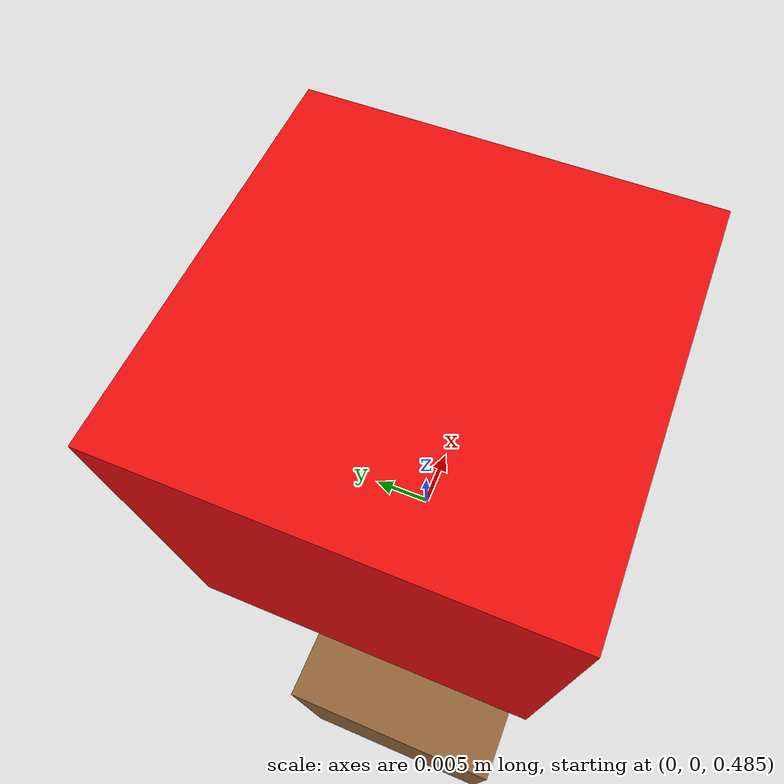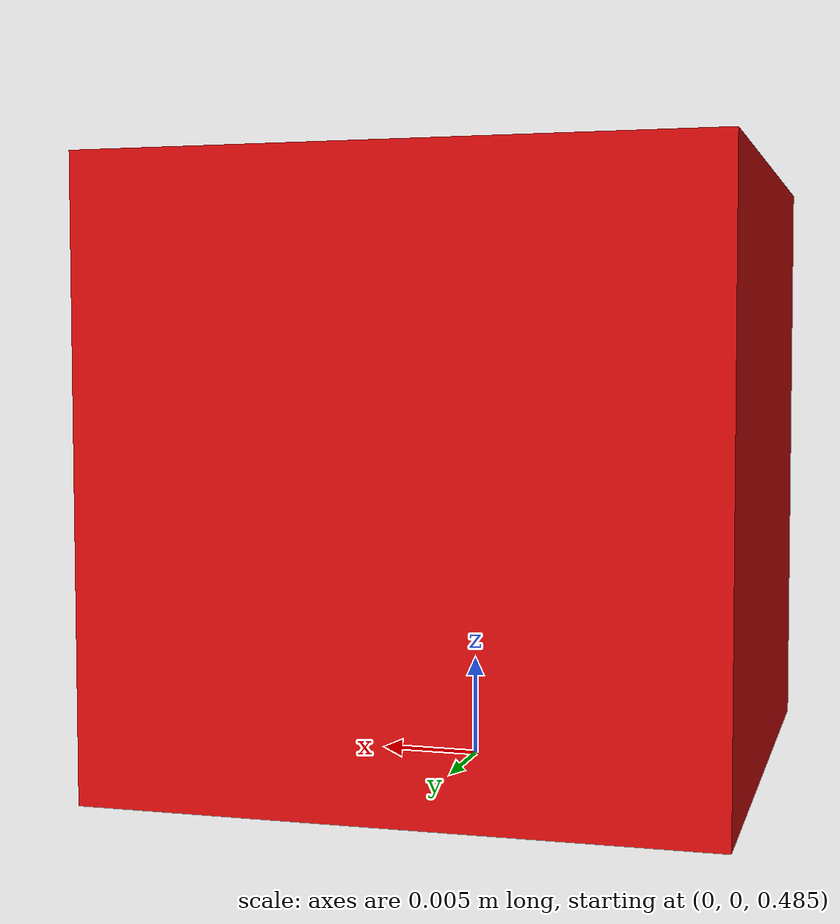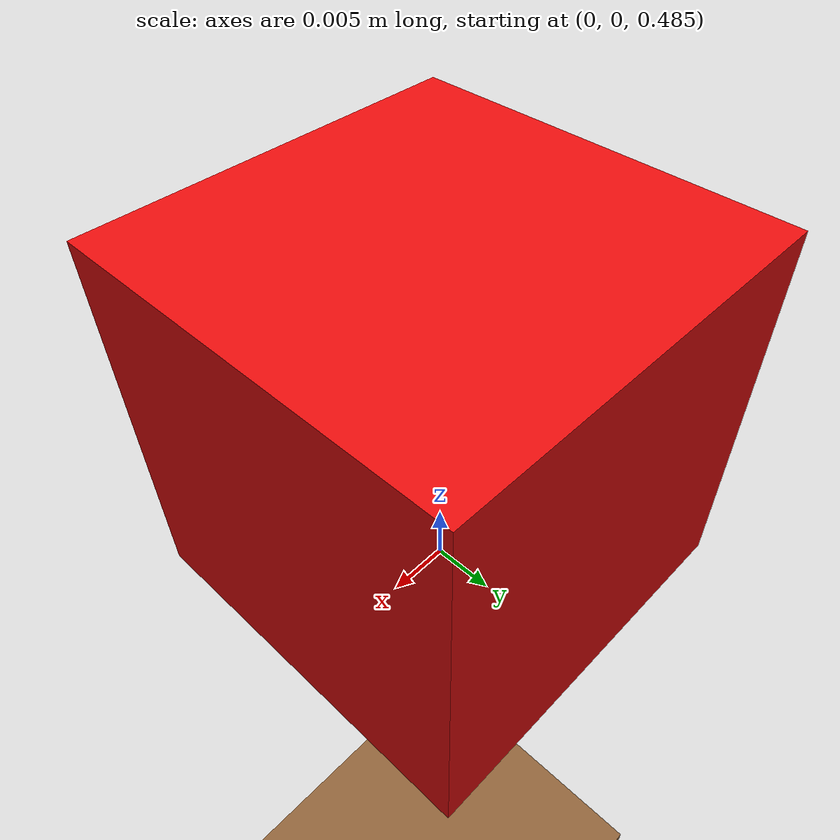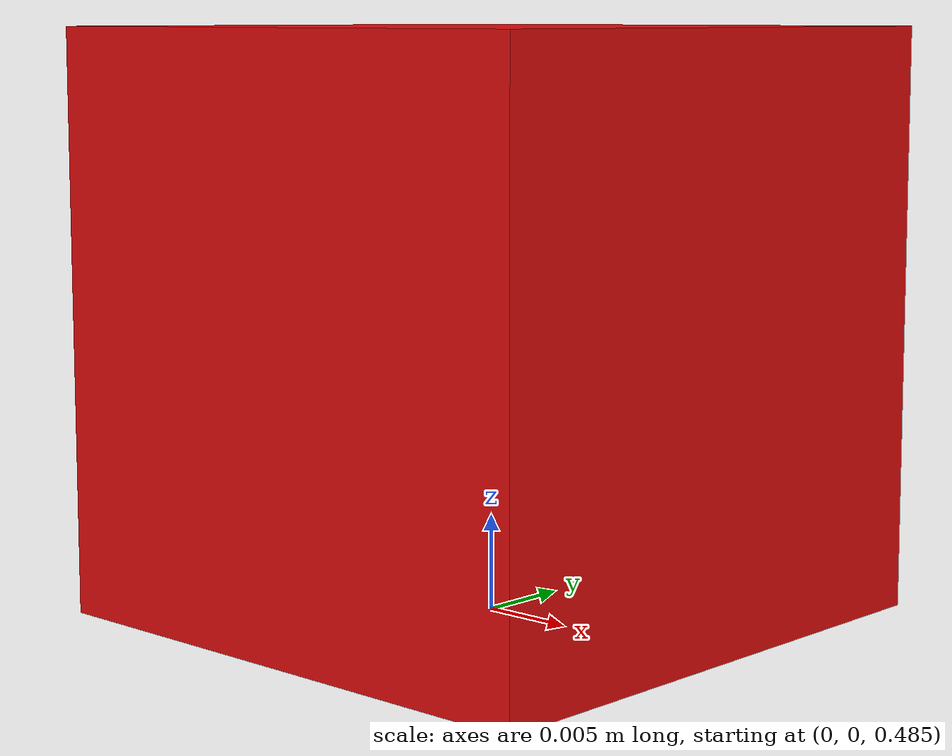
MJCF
<mujoco model="nexarm_minimal_scene">
  <compiler angle="radian"/>
  <option timestep="0.002" gravity="0 0 -9.81"/>

  <default>
    <geom friction="0.8 0.005 0.0001"/>
  </default>

  <worldbody>
    <light name="main_light" pos="0 -0.5 1.5" dir="0 0 -1"/>

    <geom
      name="floor"
      type="plane"
      size="1 1 0.1"
      rgba="0.18 0.22 0.28 1"
    />

    <body name="table" pos="0 0 0.4">
      <geom
        name="table_top"
        type="box"
        size="0.35 0.45 0.02"
        rgba="0.55 0.38 0.22 1"
      />
    </body>

    <body name="red_block" pos="0 0 0.50">
      <freejoint name="red_block_freejoint"/>
      <geom
        name="red_block_geom"
        type="box"
        size="0.015 0.015 0.015"
        mass="0.05"
        friction="1.0 0.01 0.001"
        rgba="0.9 0.05 0.05 1"
      />
    </body>
  </worldbody>
</mujoco>
